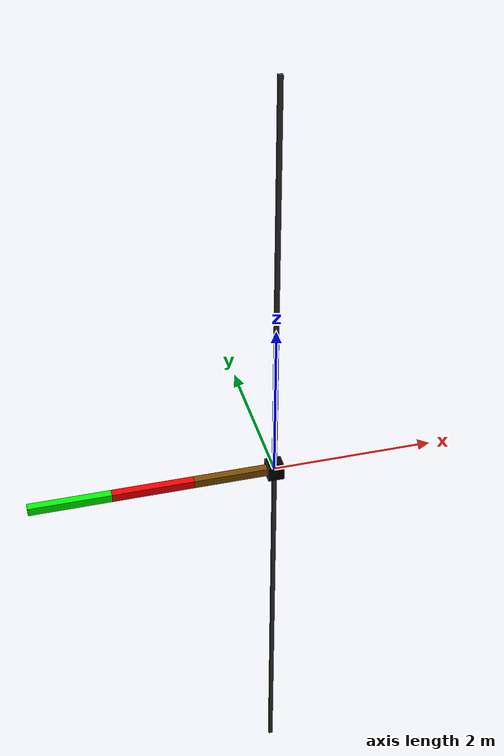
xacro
<?xml version="1.0"?>
<robot name="my_arm" xmlns:xacro="http://wiki.ros.org/xacro">
    <!-- 常量定义 -->
    <xacro:property name="link_length" value="1.0" />
    <xacro:property name="link_width" value="0.1" />
    <xacro:property name="link_height" value="0.1" />
    <xacro:property name="base_length" value="0.2"/>

    <!-- 惯性矩阵宏（补充完整，避免依赖外部文件缺失） -->
    <xacro:macro name="Box_inertial_matrix" params="m l w h">
        <inertial>
            <mass value="${m}"/>
            <inertia ixx="${m*(w*w + h*h)/12}"
                     ixy="0.0" ixz="0.0"
                     iyy="${m*(l*l + h*h)/12}"
                     iyz="0.0"
                     izz="${m*(l*l + w*w)/12}"/>
        </inertial>
    </xacro:macro>

    <!-- 统一材质宏 -->
    <material name="yellow">
        <color rgba="0.5 0.3 0.0 1.0" />
    </material>
    <material name="gray">
        <color rgba="0.2 0.2 0.2 1.0"/>
    </material>
    <material name="black">
        <color rgba="0.0 0.0 0.0 1.0" />
    </material>

    <material name="red">
        <color rgba="1.0 0.0 0.0 1.0" />
    </material>

    <material name="green">
        <color rgba="0.0 1.0 0.0 1.0" />
    </material>

    <!-- 1. 添加dummy根连杆（无惯性，解决KDL警告） -->
    <link name="dummy_root_link"/>

    <!-- 2. 滑轨连杆：挂在dummy根连杆下 -->
    <link name="Linear_rail">
        <visual>
            <geometry>
                <box size="0.05 0.05 10"/>
            </geometry>
            <material name="gray"/>
        </visual>
        <collision>
            <geometry>
                <box size="0.05 0.05 10"/>
            </geometry>
        </collision>
        <xacro:Box_inertial_matrix m="1.0" l="0.05" w="0.05" h="10"/>
    </link>
    <!-- dummy根连杆与滑轨的固定关节 -->
    <joint name="dummy_to_rail" type="fixed">
        <parent link="dummy_root_link"/>
        <child link="Linear_rail"/>
        <origin xyz="0 0 0" rpy="0 0 0"/>
    </joint>

    <!-- 3. 基座连杆 -->
    <link name="base_link">
        <visual>
            <geometry>
                <box size="${base_length} ${base_length} ${base_length}"/>
            </geometry>
            <origin xyz="0 0 0" rpy="0 0 0" />
            <material name="black"/>
        </visual>
        <collision>
            <geometry>
                <box size="${base_length} ${base_length} ${base_length}"/>
            </geometry>
            <origin xyz="0 0 0" rpy="0 0 0" />
        </collision>
        <xacro:Box_inertial_matrix m="0.1" l="${base_length}" w="${base_length}" h="${base_length}"/>
    </link>

    <!-- 滑动关节 -->
    <joint name="slide_joint" type="prismatic">
        <parent link="Linear_rail"/>
        <child link="base_link" />
        <origin xyz="0 0 0" rpy="0 0 0"/>
        <axis xyz="0 0 1"/>
        <limit lower="-5" upper="5" effort="100" velocity="2"/>
    </joint>

    <!-- 4. 机械臂连杆1（修正xyz表达式） -->
    <link name="arm_link_1">
        <visual>
            <geometry>
                <box size="${link_length} ${link_width} ${link_height}"/>
            </geometry>
            <!-- 修正：${-link_length/2} 让Xacro先计算出-0.5 -->
            <origin xyz="${-link_length/2} 0 0" rpy="0 0 0" />
            <material name="yellow"/>
        </visual>
        <collision>
            <geometry>
                <box size="${link_length} ${link_width} ${link_height}"/>
            </geometry>
            <origin xyz="0 0 0" rpy="0 0 0" />
        </collision>
        <xacro:Box_inertial_matrix m="0.1" l="${link_length}" w="${link_width}" h="${link_height}"/>
    </link>

    <!-- 5. 机械臂连杆2（修正xyz表达式） -->
    <link name="arm_link_2">
        <visual>
            <geometry>
                <box size="${link_length} ${link_width} ${link_height}"/>
            </geometry>
            <origin xyz="${-link_length/2} 0 0" rpy="0 0 0" />
            <material name="red"/>
        </visual>
        <collision>
            <geometry>
                <box size="${link_length} ${link_width} ${link_height}"/>
            </geometry>
            <origin xyz="0 0 0" rpy="0 0 0" />
        </collision>
        <xacro:Box_inertial_matrix m="0.1" l="${link_length}" w="${link_width}" h="${link_height}"/>
    </link>

    <!-- 6. 机械臂连杆3（修正xyz表达式） -->
    <link name="arm_link_3">
        <visual>
            <geometry>
                <box size="${link_length} ${link_width} ${link_height}"/>
            </geometry>
            <origin xyz="${-link_length/2} 0 0" rpy="0 0 0" />
            <material name="green"/>
        </visual>
        <collision>
            <geometry>
                <box size="${link_length} ${link_width} ${link_height}"/>
            </geometry>
            <origin xyz="0 0 0" rpy="0 0 0" />
        </collision>
        <xacro:Box_inertial_matrix m="0.1" l="${link_length}" w="${link_width}" h="${link_height}"/>
    </link>

    <!-- 旋转关节1 -->
    <joint name="joint_1" type="revolute">
        <parent link="base_link" />
        <child link="arm_link_1" />
        <origin xyz="0 0 0" rpy="0 0 0" />
        <axis xyz="0 1 0"/>
        <limit lower="-3.14" upper="3.14" effort="100" velocity="2"/>
    </joint>

    <!-- 旋转关节2 -->
    <joint name="joint_2" type="revolute">
        <parent link="arm_link_1" />
        <child link="arm_link_2" />
        <origin xyz="${-link_length} 0 0" rpy="0 0 0" />
        <axis xyz="0 1 0"/>
        <limit lower="-3.14" upper="3.14" effort="100" velocity="2"/>
    </joint>

    <!-- 旋转关节3 -->
    <joint name="joint_3" type="revolute">
        <parent link="arm_link_2" />
        <child link="arm_link_3" />
        <origin xyz="${-link_length} 0 0" rpy="0 0 0" />
        <axis xyz="0 1 0"/>
        <limit lower="-3.14" upper="3.14" effort="100" velocity="2"/>
    </joint>

    <!-- Gazebo/ros_control配置 -->
    <gazebo_ros_control plugin_name="gazebo_ros_control"/>
    <xacro:macro name="add_transmission" params="joint_name">
        <transmission name="${joint_name}_trans">
            <type>transmission_interface/SimpleTransmission</type>
            <joint name="${joint_name}">
                <hardwareInterface>hardware_interface/EffortJointInterface</hardwareInterface>
            </joint>
            <actuator name="${joint_name}_motor">
                <hardwareInterface>hardware_interface/EffortJointInterface</hardwareInterface>
                <mechanicalReduction>1</mechanicalReduction>
            </actuator>
        </transmission>
    </xacro:macro>
    <xacro:add_transmission joint_name="slide_joint"/>
    <xacro:add_transmission joint_name="joint_1"/>
    <xacro:add_transmission joint_name="joint_2"/>
    <xacro:add_transmission joint_name="joint_3"/>

</robot>
